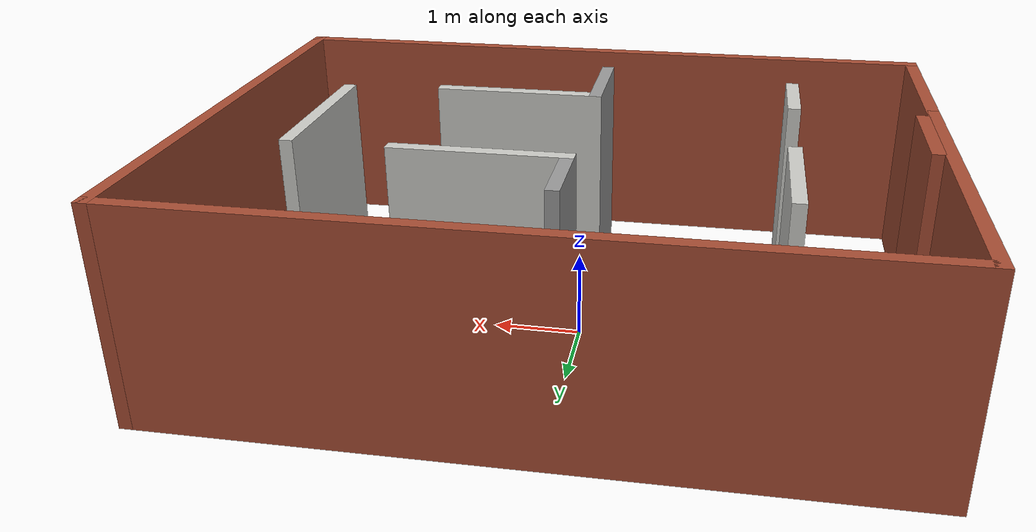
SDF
<?xml version='1.0'?>
<sdf version='1.7'>
  <model name='my_world'>
    <pose>0.19 -0.355 0 0 -0 0</pose>
    <link name='Wall_1'>
      <collision name='Wall_1_Collision'>
        <geometry>
          <box>
            <size>2.25 0.15 2.5</size>
          </box>
        </geometry>
        <pose>0 0 1.25 0 -0 0</pose>
      </collision>
      <visual name='Wall_1_Visual'>
        <pose>0 0 1.25 0 -0 0</pose>
        <geometry>
          <box>
            <size>2.25 0.15 2.5</size>
          </box>
        </geometry>
        <material>
          <script>
            <uri>file://media/materials/scripts/gazebo.material</uri>
            <name>Gazebo/Bricks</name>
          </script>
          <ambient>1 1 1 1</ambient>
        </material>
        <meta>
          <layer>0</layer>
        </meta>
      </visual>
      <pose>-4.05 -1.875 0 0 -0 -1.5708</pose>
    </link>
    <link name='Wall_11'>
      <collision name='Wall_11_Collision'>
        <geometry>
          <box>
            <size>1 0.15 2.5</size>
          </box>
        </geometry>
        <pose>0 0 1.25 0 -0 0</pose>
      </collision>
      <visual name='Wall_11_Visual'>
        <pose>0 0 1.25 0 -0 0</pose>
        <geometry>
          <box>
            <size>1 0.15 2.5</size>
          </box>
        </geometry>
        <material>
          <script>
            <uri>file://media/materials/scripts/gazebo.material</uri>
            <name>Gazebo/Grey</name>
          </script>
          <ambient>1 1 1 1</ambient>
        </material>
        <meta>
          <layer>0</layer>
        </meta>
      </visual>
      <pose>-0.175052 1.50529 0 0 -0 -1.5708</pose>
    </link>
    <link name='Wall_12'>
      <collision name='Wall_12_Collision'>
        <geometry>
          <box>
            <size>2 0.15 2.5</size>
          </box>
        </geometry>
        <pose>0 0 1.25 0 -0 0</pose>
      </collision>
      <visual name='Wall_12_Visual'>
        <pose>0 0 1.25 0 -0 0</pose>
        <geometry>
          <box>
            <size>2 0.15 2.5</size>
          </box>
        </geometry>
        <material>
          <script>
            <uri>file://media/materials/scripts/gazebo.material</uri>
            <name>Gazebo/CeilingTiled</name>
          </script>
          <ambient>1 1 1 1</ambient>
        </material>
        <meta>
          <layer>0</layer>
        </meta>
      </visual>
      <pose>0.749948 1.08029 0 0 -0 0</pose>
    </link>
    <link name='Wall_14'>
      <collision name='Wall_14_Collision'>
        <geometry>
          <box>
            <size>1.25 0.15 2.5</size>
          </box>
        </geometry>
        <pose>0 0 1.25 0 -0 0</pose>
      </collision>
      <visual name='Wall_14_Visual'>
        <pose>0 0 1.25 0 -0 0</pose>
        <geometry>
          <box>
            <size>1.25 0.15 2.5</size>
          </box>
        </geometry>
        <material>
          <script>
            <uri>file://media/materials/scripts/gazebo.material</uri>
            <name>Gazebo/Grey</name>
          </script>
          <ambient>1 1 1 1</ambient>
        </material>
        <meta>
          <layer>0</layer>
        </meta>
      </visual>
      <pose>-0.175052 -1.52703 0 0 -0 1.5708</pose>
    </link>
    <link name='Wall_15'>
      <collision name='Wall_15_Collision'>
        <geometry>
          <box>
            <size>2 0.15 2.5</size>
          </box>
        </geometry>
        <pose>0 0 1.25 0 -0 0</pose>
      </collision>
      <visual name='Wall_15_Visual'>
        <pose>0 0 1.25 0 -0 0</pose>
        <geometry>
          <box>
            <size>2 0.15 2.5</size>
          </box>
        </geometry>
        <material>
          <script>
            <uri>file://media/materials/scripts/gazebo.material</uri>
            <name>Gazebo/CeilingTiled</name>
          </script>
          <ambient>1 1 1 1</ambient>
        </material>
        <meta>
          <layer>0</layer>
        </meta>
      </visual>
      <pose>0.749948 -0.977029 0 0 -0 0</pose>
    </link>
    <link name='Wall_17'>
      <collision name='Wall_17_Collision'>
        <geometry>
          <box>
            <size>2 0.15 2.5</size>
          </box>
        </geometry>
        <pose>0 0 1.25 0 -0 0</pose>
      </collision>
      <visual name='Wall_17_Visual'>
        <pose>0 0 1.25 0 -0 0</pose>
        <geometry>
          <box>
            <size>2 0.15 2.5</size>
          </box>
        </geometry>
        <material>
          <script>
            <uri>file://media/materials/scripts/gazebo.material</uri>
            <name>Gazebo/CeilingTiled</name>
          </script>
          <ambient>1 1 1 1</ambient>
        </material>
        <meta>
          <layer>0</layer>
        </meta>
      </visual>
      <pose>2.85338 0.118174 0 0 -0 -1.5708</pose>
    </link>
    <link name='Wall_19'>
      <collision name='Wall_19_Collision'>
        <geometry>
          <box>
            <size>1.25 0.15 2.5</size>
          </box>
        </geometry>
        <pose>0 0 1.25 0 -0 0</pose>
      </collision>
      <visual name='Wall_19_Visual'>
        <pose>0 0 1.25 0 -0 0</pose>
        <geometry>
          <box>
            <size>1.25 0.15 2.5</size>
          </box>
        </geometry>
        <material>
          <script>
            <uri>file://media/materials/scripts/gazebo.material</uri>
            <name>Gazebo/Bricks</name>
          </script>
          <ambient>1 1 1 1</ambient>
        </material>
        <meta>
          <layer>0</layer>
        </meta>
      </visual>
      <pose>-3.91696 -0.185994 0 0 -0 -1.5708</pose>
    </link>
    <link name='Wall_2'>
      <collision name='Wall_2_Collision'>
        <geometry>
          <box>
            <size>8.25 0.15 2.5</size>
          </box>
        </geometry>
        <pose>0 0 1.25 0 -0 0</pose>
      </collision>
      <visual name='Wall_2_Visual'>
        <pose>0 0 1.25 0 -0 0</pose>
        <geometry>
          <box>
            <size>8.25 0.15 2.5</size>
          </box>
        </geometry>
        <material>
          <script>
            <uri>file://media/materials/scripts/gazebo.material</uri>
            <name>Gazebo/Bricks</name>
          </script>
          <ambient>1 1 1 1</ambient>
        </material>
        <meta>
          <layer>0</layer>
        </meta>
      </visual>
      <pose>0 -2.925 0 0 -0 0</pose>
    </link>
    <link name='Wall_3'>
      <collision name='Wall_3_Collision'>
        <geometry>
          <box>
            <size>6 0.15 2.5</size>
          </box>
        </geometry>
        <pose>0 0 1.25 0 -0 0</pose>
      </collision>
      <visual name='Wall_3_Visual'>
        <pose>0 0 1.25 0 -0 0</pose>
        <geometry>
          <box>
            <size>6 0.15 2.5</size>
          </box>
        </geometry>
        <material>
          <script>
            <uri>file://media/materials/scripts/gazebo.material</uri>
            <name>Gazebo/Bricks</name>
          </script>
          <ambient>1 1 1 1</ambient>
        </material>
        <meta>
          <layer>0</layer>
        </meta>
      </visual>
      <pose>4.05 0 0 0 -0 1.5708</pose>
    </link>
    <link name='Wall_4'>
      <collision name='Wall_4_Collision'>
        <geometry>
          <box>
            <size>8.25 0.15 2.5</size>
          </box>
        </geometry>
        <pose>0 0 1.25 0 -0 0</pose>
      </collision>
      <visual name='Wall_4_Visual'>
        <pose>0 0 1.25 0 -0 0</pose>
        <geometry>
          <box>
            <size>8.25 0.15 2.5</size>
          </box>
        </geometry>
        <material>
          <script>
            <uri>file://media/materials/scripts/gazebo.material</uri>
            <name>Gazebo/Bricks</name>
          </script>
          <ambient>1 1 1 1</ambient>
        </material>
        <meta>
          <layer>0</layer>
        </meta>
      </visual>
      <pose>0 2.925 0 0 -0 3.14159</pose>
    </link>
    <link name='Wall_5'>
      <collision name='Wall_5_Collision'>
        <geometry>
          <box>
            <size>4 0.15 2.5</size>
          </box>
        </geometry>
        <pose>0 0 1.25 0 -0 0</pose>
      </collision>
      <visual name='Wall_5_Visual'>
        <pose>0 0 1.25 0 -0 0</pose>
        <geometry>
          <box>
            <size>4 0.15 2.5</size>
          </box>
        </geometry>
        <material>
          <script>
            <uri>file://media/materials/scripts/gazebo.material</uri>
            <name>Gazebo/Bricks</name>
          </script>
          <ambient>1 1 1 1</ambient>
        </material>
        <meta>
          <layer>0</layer>
        </meta>
      </visual>
      <pose>-4.05 1 0 0 -0 -1.5708</pose>
    </link>
    <link name='Wall_7'>
      <collision name='Wall_7_Collision'>
        <geometry>
          <box>
            <size>1.5 0.15 2.5</size>
          </box>
        </geometry>
        <pose>0 0 1.25 0 -0 0</pose>
      </collision>
      <visual name='Wall_7_Visual'>
        <pose>0 0 1.25 0 -0 0</pose>
        <geometry>
          <box>
            <size>1.5 0.15 2.5</size>
          </box>
        </geometry>
        <material>
          <script>
            <uri>file://media/materials/scripts/gazebo.material</uri>
            <name>Gazebo/CeilingTiled</name>
          </script>
          <ambient>1 1 1 1</ambient>
        </material>
        <meta>
          <layer>0</layer>
        </meta>
      </visual>
      <pose>-2.46932 1.19411 0 0 -0 -1.5708</pose>
    </link>
    <link name='Wall_9'>
      <collision name='Wall_9_Collision'>
        <geometry>
          <box>
            <size>1 0.15 2.5</size>
          </box>
        </geometry>
        <pose>0 0 1.25 0 -0 0</pose>
      </collision>
      <visual name='Wall_9_Visual'>
        <pose>0 0 1.25 0 -0 0</pose>
        <geometry>
          <box>
            <size>1 0.15 2.5</size>
          </box>
        </geometry>
        <material>
          <script>
            <uri>file://media/materials/scripts/gazebo.material</uri>
            <name>Gazebo/CeilingTiled</name>
          </script>
          <ambient>1 1 1 1</ambient>
        </material>
        <meta>
          <layer>0</layer>
        </meta>
      </visual>
      <pose>-2.49991 -1.30901 0 0 -0 -1.5708</pose>
    </link>
    <static>1</static>
  </model>
</sdf>
